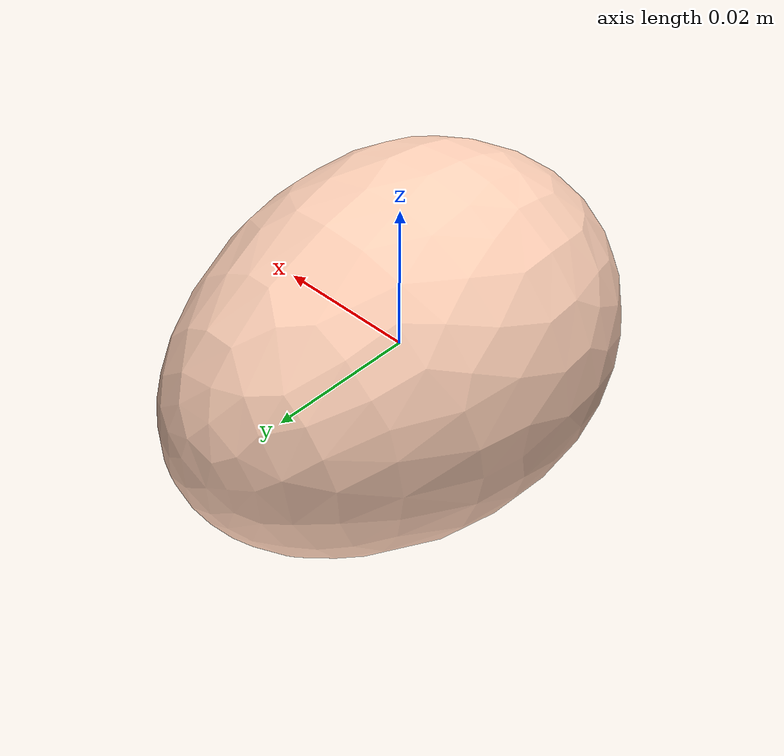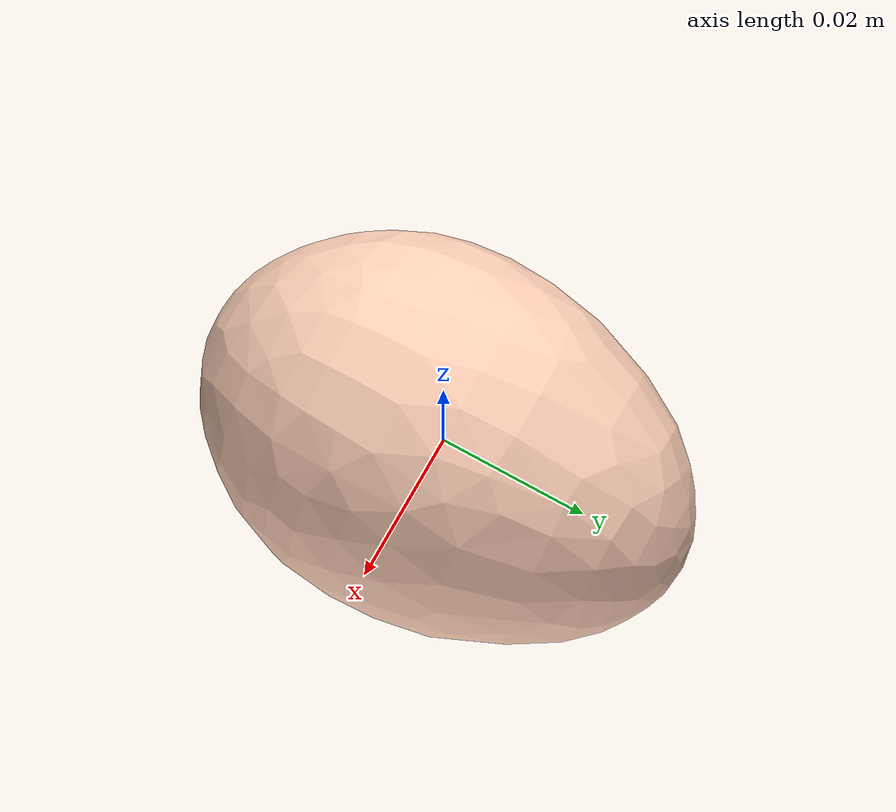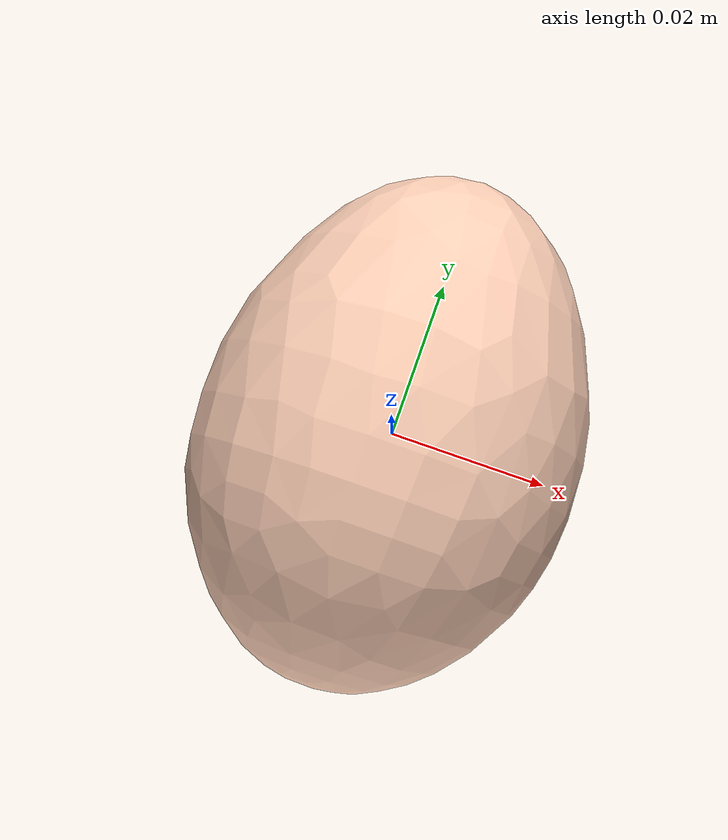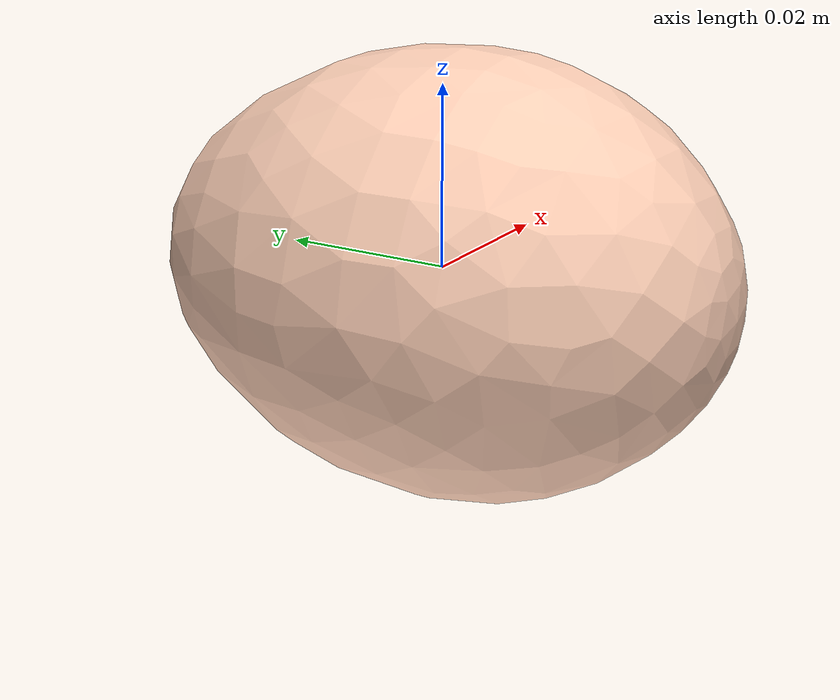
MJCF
<mujoco model="Egg_8">
  <compiler autolimits="true" boundmass="0.01" angle="radian"/>
  <default>
    <default class="/">
      <default class="__VISUAL_MJT__">
        <geom contype="0" conaffinity="0" group="0"/>
      </default>
      <default class="__STRUCTURAL_MJT__">
        <geom contype="8" conaffinity="15" group="4" friction="0.90000000000000002 0.90000000000000002 0.001" solref="0.025000000000000001 1" solimp="0.998 0.998 0.001"/>
      </default>
      <default class="__DYNAMIC_MJT__">
        <geom contype="1" conaffinity="15" group="4" friction="0.90000000000000002 0.90000000000000002 0.001" solref="0.025000000000000001 1" solimp="0.998 0.998 0.001"/>
      </default>
    </default>
  </default>
  <asset>
    <material name="material_Egg2_Mat" class="/" specular="0.5" shininess="0.5" rgba="1 0.81973430000000003 0.72058820000000001 1"/>
    <mesh name="Egg_8_egg_8" class="/" file="Egg_8_egg_8/Egg_8_egg_8.obj" scale="1 1 1"/>
  </asset>
  <worldbody>
    <body name="Egg_8">
      <joint name="Egg_8_free" class="/" type="free" pos="0 0 0" axis="0 0 1" stiffness="0" range="0 0" armature="0" damping="0.10000000000000001" frictionloss="0"/>
      <body name="Egg_8_egg_8" pos="-0 0 -9.0000000000000006e-05" quat="1 0 0 0">
        <geom name="Egg_8_egg_8" class="__VISUAL_MJT__" type="mesh" material="material_Egg2_Mat" shellinertia="true" mesh="Egg_8_egg_8"/>
        <geom name="Egg_8_PrimitiveCollider_0" class="__DYNAMIC_MJT__" type="capsule" size="0.022536847740411758 0.0090288855135440826" rgba="0 1 0 1" pos="-0 0 0" quat="0.70710678118654757 0.70710678118654746 0 0"/>
      </body>
    </body>
  </worldbody>
</mujoco>
